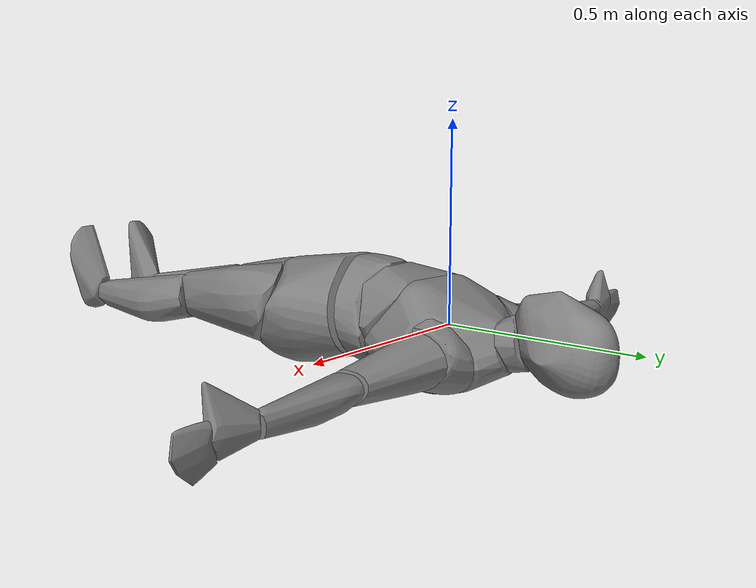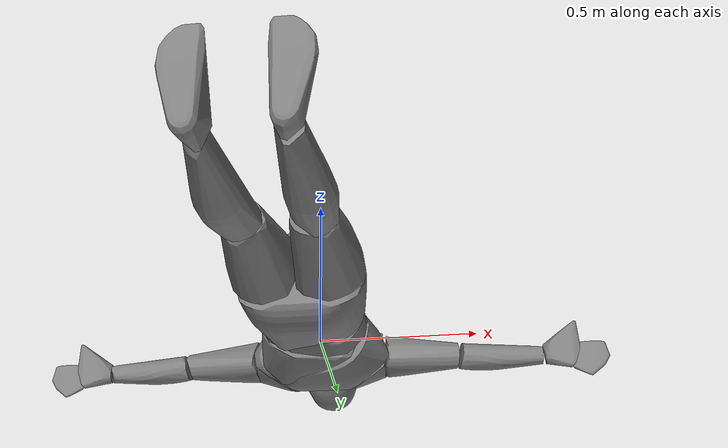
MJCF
<mujoco model="humanoid">

  <default>
    <motor ctrlrange="-1 1" ctrllimited="true"/>
    <default class="body">
      <joint type="hinge" damping="0.1" stiffness="5" armature=".007" limited="true" solimplimit="0 .99 .01"/>
    </default>
  </default>

  <asset>
    <mesh name="pelvis" file="./geom_male/pelvis.obj"></mesh>
    <mesh name="left_thigh" file="./geom_male/left_thigh.obj"></mesh>
    <mesh name="left_shin" file="./geom_male/left_shin.obj"></mesh>
    <mesh name="left_foot" file="./geom_male/left_foot.obj"></mesh>
    <mesh name="right_thigh" file="./geom_male/right_thigh.obj"></mesh>
    <mesh name="right_shin" file="./geom_male/right_shin.obj"></mesh>
    <mesh name="right_foot" file="./geom_male/right_foot.obj"></mesh>
    <mesh name="torso" file="./geom_male/torso.obj"></mesh>
    <mesh name="spine" file="./geom_male/spine.obj"></mesh>
    <mesh name="chest" file="./geom_male/chest.obj"></mesh>
    <mesh name="neck" file="./geom_male/neck.obj"></mesh>
    <mesh name="head" file="./geom_male/head.obj"></mesh>
    <mesh name="left_clavicle" file="./geom_male/left_clavicle.obj"></mesh>
    <mesh name="left_upper_arm" file="./geom_male/left_upper_arm.obj"></mesh>
    <mesh name="left_lower_arm" file="./geom_male/left_lower_arm.obj"></mesh>
    <mesh name="left_hand_part_1_palm" file="./geom_male/left_hand_part_1_palm.obj"></mesh>
    <mesh name="left_hand_part_2_finger" file="./geom_male/left_hand_part_2_finger.obj"></mesh>
    <mesh name="right_clavicle" file="./geom_male/right_clavicle.obj"></mesh>
    <mesh name="right_upper_arm" file="./geom_male/right_upper_arm.obj"></mesh>
    <mesh name="right_lower_arm" file="./geom_male/right_lower_arm.obj"></mesh>
    <mesh name="right_hand_part_1_palm" file="./geom_male/right_hand_part_1_palm.obj"></mesh>
    <mesh name="right_hand_part_2_finger" file="./geom_male/right_hand_part_2_finger.obj"></mesh>
  </asset>

  <worldbody>
    <body name="pelvis" pos="0.0011677212314680219 -0.3668408691883087 0.012669074349105358" childclass="body">
      <freejoint name="root"/>
      <inertial pos="-0.002401980306377003 -0.01547640389225317 -0.024748383962700314" quat="1 0 0 0" mass="10.0" diaginertia="1e-05 1e-05 1e-05"></inertial>
      <geom name="pelvis" type="mesh" pos="-0.002401980306377003 -0.01547640389225317 -0.024748383962700314" quat="1 0 0 0" mesh="pelvis"/>

      <body name="left_thigh" pos="0.05614368990063667 -0.09454166889190674 -0.023474548012018204">
        <joint name="left_hip_x" pos="0 0 0" axis="1 0 0" range="-180 180" stiffness="500" damping="50" armature=".02"/>
        <joint name="left_hip_y" pos="0 0 0" axis="0 1 0" range="-180 180"  stiffness="500" damping="50" armature=".02"/>
        <joint name="left_hip_z" pos="0 0 0" axis="0 0 1" range="-180 180"  stiffness="500" damping="50" armature=".02"/>
        <inertial pos="0.03547837360100287 -0.1779133050887918 0.010134188022343416" quat="1 0 0 0" mass="4.5" diaginertia="1e-05 1e-05 1e-05"></inertial>
        <geom name="left_thigh" type="mesh" pos="0.03547837360100287 -0.1779133050887918 0.010134188022343416" mesh="left_thigh"/>

        <body name="left_shin" pos="0.06722913682460785 -0.39686819911003113 -0.00665436964482069">
          <joint name="left_knee_x" pos="0 0 0" axis="1 0 0" range="-180 180" stiffness="500" damping="50" armature=".02"/>
          <joint name="left_knee_y" pos="0 0 0" axis="0 1 0" range="-180 180" stiffness="500" damping="50" armature=".02"/>
          <joint name="left_knee_z" pos="0 0 0" axis="0 0 1" range="-180 180" stiffness="500" damping="50" armature=".02"/>
          <inertial pos="-0.022855261181029516 -0.16690465180590466 -0.027590112434318602" quat="1 0 0 0" mass="3.0" diaginertia="1e-05 1e-05 1e-05"></inertial>
          <geom name="left_shin" type="mesh" pos="-0.022855261181029516 -0.16690465180590466 -0.027590112434318602" mesh="left_shin"/>

          <body name="left_foot" pos="-0.045593924820423126 -0.42128586769104004 -0.041146427392959595">
            <joint name="left_ankle_x" pos="0 0 0" axis="1 0 0" range="-180 180" stiffness="400" damping="40" armature=".01"/>
            <joint name="left_ankle_y" pos="0 0 0" axis="0 1 0" range="-180 180" stiffness="400" damping="40" armature=".01"/>
            <joint name="left_ankle_z" pos="0 0 0" axis="0 0 1" range="-180 180" stiffness="400" damping="40" armature=".01"/>
            <inertial pos="0.0264212060211068 -0.042774777552282726 0.06463103515272131" quat="1 0 0 0" mass="1.0" diaginertia="1e-05 1e-05 1e-05"></inertial>
            <geom name="left_foot" type="mesh" pos="0.0264212060211068 -0.042774777552282726 0.06463103515272131" mesh="left_foot"/>
          </body>
        </body>
      </body>

      <body name="right_thigh" pos="-0.05786965414881706 -0.10516685247421265 -0.016558833420276642">
        <joint name="right_hip_x" pos="0 0 0" axis="1 0 0" range="-180 180" stiffness="500" damping="50" armature=".02"/>
        <joint name="right_hip_y" pos="0 0 0" axis="0 1 0" range="-180 180"  stiffness="500" damping="50" armature=".02"/>
        <joint name="right_hip_z" pos="0 0 0" axis="0 0 1" range="-180 180"  stiffness="500" damping="50" armature=".02"/>
        <inertial pos="-0.036922064196151114 -0.1640598544700304 0.0036314986002540365" quat="1 0 0 0" mass="4.5" diaginertia="1e-05 1e-05 1e-05"></inertial>
        <geom name="right_thigh" type="mesh" pos="-0.036922064196151114 -0.1640598544700304 0.0036314986002540365" mesh="right_thigh"/>

        <body name="right_shin" pos="-0.05072679743170738 -0.37982121109962463 -0.01445161271840334">
          <joint name="right_knee_x" pos="0 0 0" axis="1 0 0" range="-180 180" stiffness="500" damping="50" armature=".02"/>
          <joint name="right_knee_y" pos="0 0 0" axis="0 1 0" range="-180 180" stiffness="500" damping="50" armature=".02"/>
          <joint name="right_knee_z" pos="0 0 0" axis="0 0 1" range="-180 180" stiffness="500" damping="50" armature=".02"/>
          <inertial pos="0.006331024734891823 -0.15729807612933164 -0.024948200958339575" quat="1 0 0 0" mass="3.0" diaginertia="1e-05 1e-05 1e-05"></inertial>
          <geom name="right_shin" type="mesh" pos="0.006331024734891823 -0.15729807612933164 -0.024948200958339575" mesh="right_shin"/>

          <body name="right_foot" pos="0.017154879868030548 -0.43491196632385254 -0.0399375781416893">
            <joint name="right_ankle_x" pos="0 0 0" axis="1 0 0" range="-180 180" stiffness="400" damping="40" armature=".01"/>
            <joint name="right_ankle_y" pos="0 0 0" axis="0 1 0" range="-180 180" stiffness="400" damping="40" armature=".01"/>
            <joint name="right_ankle_z" pos="0 0 0" axis="0 0 1" range="-180 180" stiffness="400" damping="40" armature=".01"/>
            <inertial pos="-0.014579158728331322 -0.028659720274886887 0.06202511261753508" quat="1 0 0 0" mass="1.0" diaginertia="1e-05 1e-05 1e-05"></inertial>
            <geom name="right_foot" type="mesh" pos="-0.014579158728331322 -0.028659720274886887 0.06202511261753508" mesh="right_foot"/>
          </body>
        </body>
      </body>

      <body name="torso" pos="-0.00133613683283329 0.11041679978370667 -0.03792468458414078">
        <joint name="abdomen_x" pos="0 0 0" axis="1 0 0" range="-180 180" stiffness="1000" damping="100" armature=".02"/>
        <joint name="abdomen_y" pos="0 0 0" axis="0 1 0" range="-180 180" stiffness="1000" damping="100" armature=".02"/>
        <joint name="abdomen_z" pos="0 0 0" axis="0 0 1" range="-180 180" stiffness="1000" damping="100" armature=".02"/>
        <inertial pos="0.009877896181456966 0.04960698877902721 0.04448446537404187" quat="1 0 0 0" mass="4.0" diaginertia="1e-05 1e-05 1e-05"></inertial>
        <geom name="torso" type="mesh" pos="0.009877896181456966 0.04960698877902721 0.04448446537404187" mesh="torso"/>

        <body name="spine" pos="0.010209237225353718 0.15097127854824066 0.00444234162569046">
          <joint name="spine_x" pos="0 0 0" axis="1 0 0" range="-180 180" stiffness="500" damping="50" armature=".02"/>
          <joint name="spine_y" pos="0 0 0" axis="0 1 0" range="-180 180" stiffness="500" damping="50" armature=".02"/>
          <joint name="spine_z" pos="0 0 0" axis="0 0 1" range="-180 180" stiffness="500" damping="50" armature=".02"/>
          <inertial pos="-0.03632897290997099 -0.00014949722504902307 0.01882986988630209" quat="1 0 0 0" mass="4.0" diaginertia="1e-05 1e-05 1e-05"></inertial>
          <geom name="spine" type="mesh" pos="-0.03632897290997099 -0.00014949722504902307 0.01882986988630209" mesh="spine"/>

          <body name="chest" pos="-0.008991977199912071 0.05784686654806137 0.022669697180390358">
            <joint name="chest_x" pos="0 0 0" axis="1 0 0" range="-180 180" stiffness="500" damping="50" armature=".02"/>
            <joint name="chest_y" pos="0 0 0" axis="0 1 0" range="-180 180" stiffness="500" damping="50" armature=".02"/>
            <joint name="chest_z" pos="0 0 0" axis="0 0 1" range="-180 180" stiffness="500" damping="50" armature=".02"/>
            <inertial pos="0.012089941909987727 0.06590164676062675 -0.034032804851286194" quat="1 0 0 0" mass="4.0" diaginertia="1e-05 1e-05 1e-05"></inertial>
            <geom name="chest" type="mesh" pos="0.012089941909987727 0.06590164676062675 -0.034032804851286194" mesh="chest"/>

            <body name="neck" pos="-0.009582404047250748 0.166020929813385 -0.027240406721830368">
              <joint name="neck_x" axis="1 0 0" range="-180 180" stiffness="100" damping="10" armature=".01"/>
              <joint name="neck_y" axis="0 1 0" range="-180 180" stiffness="100" damping="10" armature=".01"/>
              <joint name="neck_z" axis="0 0 1" range="-180 180" stiffness="100" damping="10" armature=".01"/>
              <inertial pos="0.00675619345841999 0.07350885457710714 0.003625194269338933" quat="1 0 0 0" mass="1.0" diaginertia="1e-05 1e-05 1e-05"></inertial>
              <geom name="neck" type="mesh" pos="0.00675619345841999 0.07350885457710714 0.003625194269338933" mesh="neck"/>

              <body name="head" pos="0.02290351688861847 0.16071966290473938 0.022939788177609444">
                <joint name="head_x" axis="1 0 0" range="-180 180" stiffness="100" damping="10" armature=".01"/>
                <joint name="head_y" axis="0 1 0" range="-180 180" stiffness="100" damping="10" armature=".01"/>
                <joint name="head_z" axis="0 0 1" range="-180 180" stiffness="100" damping="10" armature=".01"/>
                <inertial pos="-0.01437050265995752 0.03826754825468837 -0.003137605668428297" quat="1 0 0 0" mass="3.0" diaginertia="1e-05 1e-05 1e-05"></inertial>
                <geom name="head" type="mesh" pos="-0.01437050265995752 0.03826754825468837 -0.003137605668428297" mesh="head"/>
              </body>
            </body>

            <body name="left_clavicle" pos="0.04242061823606491 0.07627739012241364 -0.005254914052784443">
              <joint name="left_clavicle_x" axis="1 0 0" range="-180 180"  stiffness="400" damping="40" armature=".02"/>
              <joint name="left_clavicle_y" axis="0 1 0" range="-180 180"  stiffness="400" damping="40" armature=".02"/>
              <joint name="left_clavicle_z" axis="0 0 1" range="-180 180"  stiffness="400" damping="40" armature=".02"/>
              <inertial pos="0.11923153105174604 0.05159505275767999 -0.04980270657948168" quat="1 0 0 0" mass="1.0" diaginertia="1e-05 1e-05 1e-05"></inertial>
              <geom name="left_clavicle" type="mesh" pos="0.11923153105174604 0.05159505275767999 -0.04980270657948168" mesh="left_clavicle"/>

              <body name="left_upper_arm" pos="0.1409456580877304 0.060416869819164276 -0.01489903312176466">
                <joint name="left_shoulder_x" axis="1 0 0" range="-180 180"  stiffness="400" damping="40" armature=".02"/>
                <joint name="left_shoulder_y" axis="0 1 0" range="-180 180" stiffness="400" damping="40" armature=".02"/>
                <joint name="left_shoulder_z" axis="0 0 1" range="-180 180" stiffness="400" damping="40" armature=".02"/>
                <inertial pos="0.12180196435180407 -0.03684507115838842 -0.03032523814389514" quat="1 0 0 0" mass="1.5" diaginertia="1e-05 1e-05 1e-05"></inertial>
                <geom name="left_upper_arm" type="mesh" pos="0.12180196435180407 -0.03684507115838842 -0.03032523814389514" mesh="left_upper_arm"/>

                <body name="left_lower_arm" pos="0.25474870204925537 -0.0761655867099762 -0.0454922690987587">
                  <joint name="left_elbow_x" axis="1 0 0" range="-180 180" stiffness="300" damping="30" armature=".01"/>
                  <joint name="left_elbow_y" axis="0 1 0" range="-180 180" stiffness="300" damping="30" armature=".01"/>
                  <joint name="left_elbow_z" axis="0 0 1" range="-180 180" stiffness="300" damping="30" armature=".01"/>
                  <inertial pos="0.11633361257610537 0.028649489285974567 -0.0004144518882862588" quat="1 0 0 0" mass="1.0" diaginertia="1e-05 1e-05 1e-05"></inertial>
                  <geom name="left_lower_arm" type="mesh" pos="0.11633361257610537 0.028649489285974567 -0.0004144518882862588" mesh="left_lower_arm"/>

                  <body name="left_hand" pos="0.27160394191741943 0.02561309188604355 -0.0006483271718025208">
                    <joint name="left_wrist_x" axis="1 0 0" range="-180 180" stiffness="200" damping="20" armature=".01"/>
                    <joint name="left_wrist_y" axis="0 1 0" range="-180 180" stiffness="200" damping="20" armature=".01"/>
                    <joint name="left_wrist_z" axis="0 0 1" range="-180 180" stiffness="200" damping="20" armature=".01"/>
                    <inertial pos="0.07982255752119019 -0.008922063561938398 0.004720762202933231" quat="1 0 0 0" mass="0.5" diaginertia="1e-05 1e-05 1e-05"></inertial>
                    <geom name="left_hand_part_1_palm" type="mesh" pos="0.07982255752119019 -0.008922063561938398 0.004720762202933231" mesh="left_hand_part_1_palm"/>
                    <geom name="left_hand_part_2_finger" type="mesh" pos="0.07982255752119019 -0.008922063561938398 0.004720762202933231" mesh="left_hand_part_2_finger"/>
                  </body>
                </body>
              </body>
            </body>

            <body name="right_clavicle" pos="-0.04607690870761871 0.07681627571582794 -0.00852900743484497">
              <joint name="right_clavicle_x" axis="1 0 0" range="-180 180"  stiffness="400" damping="40" armature=".02"/>
              <joint name="right_clavicle_y" axis="0 1 0" range="-180 180" stiffness="400" damping="40" armature=".02"/>
              <joint name="right_clavicle_z" axis="0 0 1" range="-180 180" stiffness="400" damping="40" armature=".02"/>
              <inertial pos="-0.10897205028885713 0.044662441279706984 -0.045913898455038404" quat="1 0 0 0" mass="1.0" diaginertia="1e-05 1e-05 1e-05"></inertial>
              <geom name="right_clavicle" type="mesh" pos="-0.10897205028885713 0.044662441279706984 -0.045913898455038404" mesh="right_clavicle"/>

              <body name="right_upper_arm" pos="-0.1303553283214569 0.058849237859249115 -0.012586284428834915">
                <joint name="right_shoulder_x" axis="1 0 0" range="-180 180"  stiffness="400" damping="40" armature=".02"/>
                <joint name="right_shoulder_y" axis="0 1 0" range="-180 180" stiffness="400" damping="40" armature=".02"/>
                <joint name="right_shoulder_z" axis="0 0 1" range="-180 180" stiffness="400" damping="40" armature=".02"/>
                <inertial pos="-0.12907529256321734 -0.03625429239320581 -0.02903768054704749" quat="1 0 0 0" mass="1.5" diaginertia="1e-05 1e-05 1e-05"></inertial>
                <geom name="right_upper_arm" type="mesh" pos="-0.12907529256321734 -0.03625429239320581 -0.02903768054704749" mesh="right_upper_arm"/>

                <body name="right_lower_arm" pos="-0.2724926471710205 -0.04592560604214668 -0.032428935170173645">
                  <joint name="right_elbow_x" axis="1 0 0" range="-180 180" stiffness="300" damping="30" armature=".01"/>
                  <joint name="right_elbow_y" axis="0 1 0" range="-180 180" stiffness="300" damping="30" armature=".01"/>
                  <joint name="right_elbow_z" axis="0 0 1" range="-180 180" stiffness="300" damping="30" armature=".01"/>
                  <inertial pos="-0.10197029606460631 -0.0005091530519303228 -0.012317895146602007" quat="1 0 0 0" mass="1.0" diaginertia="1e-05 1e-05 1e-05"></inertial>
                  <geom name="right_lower_arm" type="mesh" pos="-0.10197029606460631 -0.0005091530519303228 -0.012317895146602007" mesh="right_lower_arm"/>

                  <body name="right_hand" pos="-0.2633793354034424 2.8681010007858276e-05 -0.011822231113910675">
                    <joint name="right_wrist_x" axis="1 0 0" range="-180 180" stiffness="200" damping="20" armature=".01"/>
                    <joint name="right_wrist_y" axis="0 1 0" range="-180 180" stiffness="200" damping="20" armature=".01"/>
                    <joint name="right_wrist_z" axis="0 0 1" range="-180 180" stiffness="200" damping="20" armature=".01"/>
                    <inertial pos="-0.0774482034197786 -0.012316402889919153 0.0036101045285670025" quat="1 0 0 0" mass="0.5" diaginertia="1e-05 1e-05 1e-05"></inertial>
                    <geom name="right_hand_part_1_palm" type="mesh" pos="-0.0774482034197786 -0.012316402889919153 0.0036101045285670025" mesh="right_hand_part_1_palm"/>
                    <geom name="right_hand_part_2_finger" type="mesh" pos="-0.0774482034197786 -0.012316402889919153 0.0036101045285670025" mesh="right_hand_part_2_finger"/>
                  </body>
                </body>
              </body>
            </body>
          </body>
        </body>
      </body>
    </body>
  </worldbody>

  <actuator>
    <motor name='abdomen_x'       	gear='200' 	joint='abdomen_x'/>
    <motor name='abdomen_y'       	gear='200' 	joint='abdomen_y'/>
    <motor name='abdomen_z'       	gear='200' 	joint='abdomen_z'/>
    <motor name='spine_x'       	  gear='200' 	joint='spine_x'/>
    <motor name='spine_y'       	  gear='200' 	joint='spine_y'/>
    <motor name='spine_z'       	  gear='200' 	joint='spine_z'/>
    <motor name='chest_x'       	  gear='200' 	joint='chest_x'/>
    <motor name='chest_y'       	  gear='200' 	joint='chest_y'/>
    <motor name='chest_z'       	  gear='200' 	joint='chest_z'/>
    <motor name='neck_x'            gear='50' 	joint='neck_x'/>
    <motor name='neck_y'            gear='50' 	joint='neck_y'/>
    <motor name='neck_z'            gear='50' 	joint='neck_z'/>
    <motor name='head_x'            gear='50' 	joint='head_x'/>
    <motor name='head_y'            gear='50' 	joint='head_y'/>
    <motor name='head_z'            gear='50' 	joint='head_z'/>
    <motor name='left_hip_x'       	gear='200' 	joint='left_hip_x'/>
    <motor name='left_hip_y'       	gear='200' 	joint='left_hip_y'/>
    <motor name='left_hip_z'       	gear='200' 	joint='left_hip_z'/>
    <motor name='left_knee_x'       gear='150' 	joint='left_knee_x'/>
    <motor name='left_knee_y'       gear='150' 	joint='left_knee_y'/>
    <motor name='left_knee_z'       gear='150' 	joint='left_knee_z'/>
    <motor name='left_ankle_x'      gear='90' 	joint='left_ankle_x'/>
    <motor name='left_ankle_y'      gear='90' 	joint='left_ankle_y'/>
    <motor name='left_ankle_z'      gear='90' 	joint='left_ankle_z'/>
    <motor name='right_hip_x'       gear='200' 	joint='right_hip_x'/>
    <motor name='right_hip_y'       gear='200' 	joint='right_hip_y'/>
    <motor name='right_hip_z'       gear='200' 	joint='right_hip_z'/>
    <motor name='right_knee_x'      gear='150' 	joint='right_knee_x'/>
    <motor name='right_knee_y'      gear='150' 	joint='right_knee_y'/>
    <motor name='right_knee_z'      gear='150' 	joint='right_knee_z'/>
    <motor name='right_ankle_x'     gear='90' 	joint='right_ankle_x'/>
    <motor name='right_ankle_y'     gear='90' 	joint='right_ankle_y'/>
    <motor name='right_ankle_z'     gear='90' 	joint='right_ankle_z'/>
    <motor name='left_clavicle_x' 	gear='100' 	joint='left_clavicle_x'/>
    <motor name='left_clavicle_y' 	gear='100' 	joint='left_clavicle_y'/>
    <motor name='left_clavicle_z' 	gear='100' 	joint='left_clavicle_z'/>
    <motor name='left_shoulder_x' 	gear='100' 	joint='left_shoulder_x'/>
    <motor name='left_shoulder_y' 	gear='100' 	joint='left_shoulder_y'/>
    <motor name='left_shoulder_z' 	gear='100' 	joint='left_shoulder_z'/>
    <motor name='left_elbow_x'      gear='70' 	joint='left_elbow_x'/>
    <motor name='left_elbow_y'      gear='70' 	joint='left_elbow_y'/>
    <motor name='left_elbow_z'      gear='70' 	joint='left_elbow_z'/>
    <motor name='left_wrist_x' 	    gear='50' 	joint='left_wrist_x'/>
    <motor name='left_wrist_y' 	    gear='50' 	joint='left_wrist_y'/>
    <motor name='left_wrist_z' 	    gear='50' 	joint='left_wrist_z'/>
    <motor name='right_clavicle_x' 	gear='100' 	joint='right_clavicle_x'/>
    <motor name='right_clavicle_y' 	gear='100' 	joint='right_clavicle_y'/>
    <motor name='right_clavicle_z' 	gear='100' 	joint='right_clavicle_z'/>
    <motor name='right_shoulder_x' 	gear='100' 	joint='right_shoulder_x'/>
    <motor name='right_shoulder_y' 	gear='100' 	joint='right_shoulder_y'/>
    <motor name='right_shoulder_z' 	gear='100' 	joint='right_shoulder_z'/>
    <motor name='right_elbow_x'     gear='70' 	joint='right_elbow_x'/>
    <motor name='right_elbow_y'     gear='70' 	joint='right_elbow_y'/>
    <motor name='right_elbow_z'     gear='70' 	joint='right_elbow_z'/>
    <motor name='right_wrist_x' 	  gear='50' 	joint='right_wrist_x'/>
    <motor name='right_wrist_y' 	  gear='50' 	joint='right_wrist_y'/>
    <motor name='right_wrist_z' 	  gear='50' 	joint='right_wrist_z'/>
  </actuator>

</mujoco>
